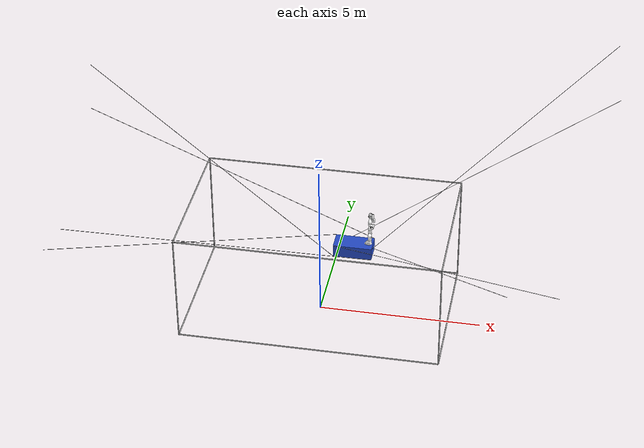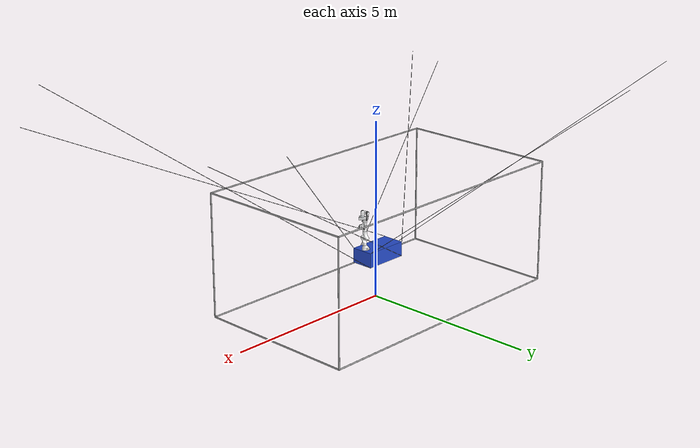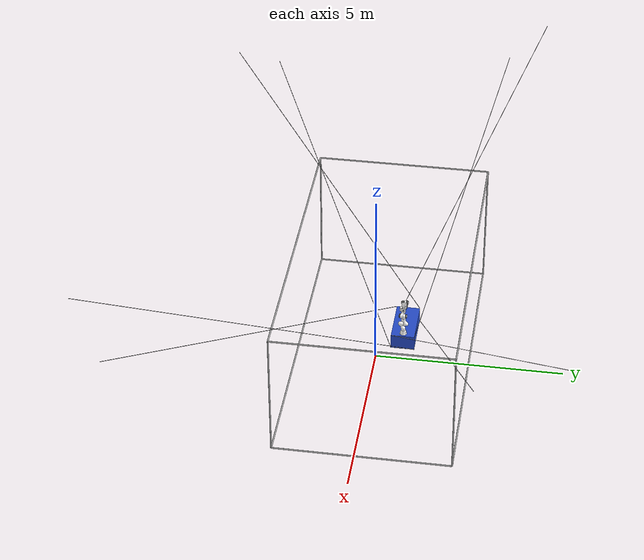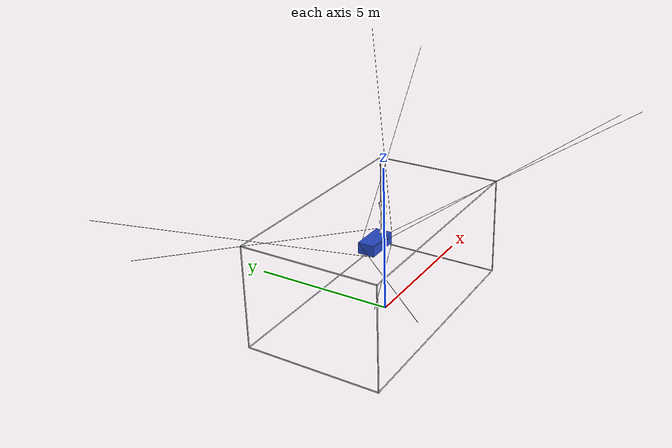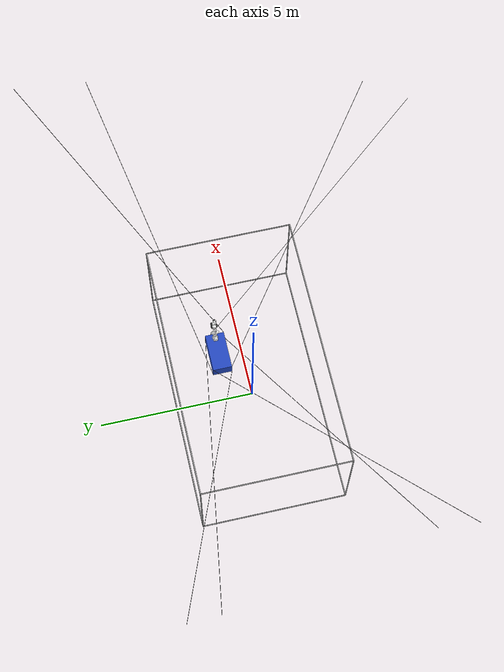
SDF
<?xml version="1.0"?>
<sdf version="1.4">
  <model name="upcaroca">
    <!--Definition of the robot frame-->
    <link name="frame">
      <pose>0 0 0 0 0 0</pose>
      <inertial>
        <inertia>
          <ixx>100000</ixx>
          <iyy>100000</iyy>
          <izz>100000</izz>
          <ixy>0</ixy>
          <ixz>0</ixz>
          <iyz>0</iyz>
        </inertia>
        <mass>100000</mass>
      </inertial>
      <visual name="visual1">
        <geometry>
          <cylinder>
            <radius>0.02</radius>
            <length>3.48</length>
          </cylinder>
        </geometry>
        <pose>-4.000000 -2.100000 1.760000 0.000000 0.000000 0.000000</pose>
        <material>
          <script>
            <uri>file://media/materials/scripts/kitchen.material</uri>
            <name>Gazebo/Grey</name>
          </script>
        </material>
      </visual>
      <collision name="collision1">
        <geometry>
          <cylinder>
            <radius>0.02</radius>
          </cylinder>
        </geometry>
        <pose>-4.000000 -2.100000 1.760000 0.000000 0.000000 0.000000</pose>
      </collision>
      <visual name="visual2">
        <geometry>
          <cylinder>
            <radius>0.02</radius>
            <length>4.6</length>
          </cylinder>
        </geometry>
        <pose>-4.000000 0.200000 0.020000 1.570796 0.000000 0.000000</pose>
        <material>
          <script>
            <uri>file://media/materials/scripts/kitchen.material</uri>
            <name>Gazebo/Grey</name>
          </script>
        </material>
      </visual>
      <collision name="collision2">
        <geometry>
          <cylinder>
            <radius>0.02</radius>
          </cylinder>
        </geometry>
        <pose>-4.000000 0.200000 0.020000 1.570796 0.000000 0.000000</pose>
      </collision>
      <visual name="visual3">
        <geometry>
          <cylinder>
            <radius>0.02</radius>
            <length>8.0</length>
          </cylinder>
        </geometry>
        <pose>0.000000 -2.100000 0.020000 0.000000 1.570796 0.000000</pose>
        <material>
          <script>
            <uri>file://media/materials/scripts/kitchen.material</uri>
            <name>Gazebo/Grey</name>
          </script>
        </material>
      </visual>
      <collision name="collision3">
        <geometry>
          <cylinder>
            <radius>0.02</radius>
          </cylinder>
        </geometry>
        <pose>0.000000 -2.100000 0.020000 0.000000 1.570796 0.000000</pose>
      </collision>
      <visual name="visual4">
        <geometry>
          <cylinder>
            <radius>0.02</radius>
            <length>4.6</length>
          </cylinder>
        </geometry>
        <pose>-4.000000 0.200000 3.500000 1.570796 0.000000 0.000000</pose>
        <material>
          <script>
            <uri>file://media/materials/scripts/kitchen.material</uri>
            <name>Gazebo/Grey</name>
          </script>
        </material>
      </visual>
      <collision name="collision4">
        <geometry>
          <cylinder>
            <radius>0.02</radius>
          </cylinder>
        </geometry>
        <pose>-4.000000 0.200000 3.500000 1.570796 0.000000 0.000000</pose>
      </collision>
      <visual name="visual5">
        <geometry>
          <cylinder>
            <radius>0.02</radius>
            <length>8.0</length>
          </cylinder>
        </geometry>
        <pose>0.000000 -2.100000 3.500000 0.000000 1.570796 0.000000</pose>
        <material>
          <script>
            <uri>file://media/materials/scripts/kitchen.material</uri>
            <name>Gazebo/Grey</name>
          </script>
        </material>
      </visual>
      <collision name="collision5">
        <geometry>
          <cylinder>
            <radius>0.02</radius>
          </cylinder>
        </geometry>
        <pose>0.000000 -2.100000 3.500000 0.000000 1.570796 0.000000</pose>
      </collision>
      <visual name="visual6">
        <geometry>
          <cylinder>
            <radius>0.02</radius>
            <length>3.48</length>
          </cylinder>
        </geometry>
        <pose>-4.000000 2.500000 1.760000 0.000000 0.000000 0.000000</pose>
        <material>
          <script>
            <uri>file://media/materials/scripts/kitchen.material</uri>
            <name>Gazebo/Grey</name>
          </script>
        </material>
      </visual>
      <collision name="collision6">
        <geometry>
          <cylinder>
            <radius>0.02</radius>
          </cylinder>
        </geometry>
        <pose>-4.000000 2.500000 1.760000 0.000000 0.000000 0.000000</pose>
      </collision>
      <visual name="visual7">
        <geometry>
          <cylinder>
            <radius>0.02</radius>
            <length>8.0</length>
          </cylinder>
        </geometry>
        <pose>0.000000 2.500000 0.020000 0.000000 1.570796 0.000000</pose>
        <material>
          <script>
            <uri>file://media/materials/scripts/kitchen.material</uri>
            <name>Gazebo/Grey</name>
          </script>
        </material>
      </visual>
      <collision name="collision7">
        <geometry>
          <cylinder>
            <radius>0.02</radius>
          </cylinder>
        </geometry>
        <pose>0.000000 2.500000 0.020000 0.000000 1.570796 0.000000</pose>
      </collision>
      <visual name="visual8">
        <geometry>
          <cylinder>
            <radius>0.02</radius>
            <length>8.0</length>
          </cylinder>
        </geometry>
        <pose>0.000000 2.500000 3.500000 0.000000 1.570796 0.000000</pose>
        <material>
          <script>
            <uri>file://media/materials/scripts/kitchen.material</uri>
            <name>Gazebo/Grey</name>
          </script>
        </material>
      </visual>
      <collision name="collision8">
        <geometry>
          <cylinder>
            <radius>0.02</radius>
          </cylinder>
        </geometry>
        <pose>0.000000 2.500000 3.500000 0.000000 1.570796 0.000000</pose>
      </collision>
      <visual name="visual9">
        <geometry>
          <cylinder>
            <radius>0.02</radius>
            <length>3.48</length>
          </cylinder>
        </geometry>
        <pose>4.000000 -2.100000 1.760000 0.000000 0.000000 0.000000</pose>
        <material>
          <script>
            <uri>file://media/materials/scripts/kitchen.material</uri>
            <name>Gazebo/Grey</name>
          </script>
        </material>
      </visual>
      <collision name="collision9">
        <geometry>
          <cylinder>
            <radius>0.02</radius>
          </cylinder>
        </geometry>
        <pose>4.000000 -2.100000 1.760000 0.000000 0.000000 0.000000</pose>
      </collision>
      <visual name="visual10">
        <geometry>
          <cylinder>
            <radius>0.02</radius>
            <length>4.6</length>
          </cylinder>
        </geometry>
        <pose>4.000000 0.200000 0.020000 1.570796 0.000000 0.000000</pose>
        <material>
          <script>
            <uri>file://media/materials/scripts/kitchen.material</uri>
            <name>Gazebo/Grey</name>
          </script>
        </material>
      </visual>
      <collision name="collision10">
        <geometry>
          <cylinder>
            <radius>0.02</radius>
          </cylinder>
        </geometry>
        <pose>4.000000 0.200000 0.020000 1.570796 0.000000 0.000000</pose>
      </collision>
      <visual name="visual11">
        <geometry>
          <cylinder>
            <radius>0.02</radius>
            <length>4.6</length>
          </cylinder>
        </geometry>
        <pose>4.000000 0.200000 3.500000 1.570796 0.000000 0.000000</pose>
        <material>
          <script>
            <uri>file://media/materials/scripts/kitchen.material</uri>
            <name>Gazebo/Grey</name>
          </script>
        </material>
      </visual>
      <collision name="collision11">
        <geometry>
          <cylinder>
            <radius>0.02</radius>
          </cylinder>
        </geometry>
        <pose>4.000000 0.200000 3.500000 1.570796 0.000000 0.000000</pose>
      </collision>
      <visual name="visual12">
        <geometry>
          <cylinder>
            <radius>0.02</radius>
            <length>3.48</length>
          </cylinder>
        </geometry>
        <pose>4.000000 2.500000 1.760000 0.000000 0.000000 0.000000</pose>
        <material>
          <script>
            <uri>file://media/materials/scripts/kitchen.material</uri>
            <name>Gazebo/Grey</name>
          </script>
        </material>
      </visual>
      <collision name="collision12">
        <geometry>
          <cylinder>
            <radius>0.02</radius>
          </cylinder>
        </geometry>
        <pose>4.000000 2.500000 1.760000 0.000000 0.000000 0.000000</pose>
      </collision>
    </link>
    <!--Definition of the robot cables-->
    <!--Definition of the robot platform-->
    <link name="platform">
      <pose>0.900000 0.900000 1.800000 0.000000 0.000000 0.000000</pose>
      <visual name="visualpf">
        <geometry>
          <box>
            <size>1.200000 0.600000 0.400000</size>
          </box>
        </geometry>
        <material>
          <script>
            <uri>file://media/materials/scripts/kitchen.material</uri>
            <name>Gazebo/Blue</name>
          </script>
        </material>
      </visual>
      <collision name="collisionpf">
        <geometry>
          <box>
            <size>1.200000 0.600000 0.400000</size>
          </box>
        </geometry>
      </collision>
      <inertial>
        <inertia>
          <ixx>6.5</ixx>
          <iyy>20.0</iyy>
          <izz>22.5</izz>
          <ixy>0.0</ixy>
          <ixz>0.0</ixz>
          <iyz>0.0</iyz>
        </inertia>
        <mass>150</mass>
      </inertial>
    </link>
    <link name="cable0">
      <pose>-2.645843 -1.555838 3.175420 -2.201876 0.998615 -1.642199</pose>
      <visual name="visual">
        <geometry>
          <cylinder>
            <radius>0.005</radius>
            <length>9.862575728479857</length>
          </cylinder>
        </geometry>
        <material>
          <script>
            <uri>file://media/materials/scripts/kitchen.material</uri>
            <name>Gazebo/Black</name>
          </script>
        </material>
      </visual>
      <inertial>
        <inertia>
          <ixx>0.001</ixx>
          <iyy>0.001</iyy>
          <izz>0.001</izz>
          <ixy>0</ixy>
          <ixz>0</ixz>
          <iyz>0</iyz>
        </inertia>
        <mass>0.001</mass>
      </inertial>
    </link>
    <link name="virt_X0">
      <inertial>
        <inertia>
          <ixx>0.001</ixx>
          <iyy>0.001</iyy>
          <izz>0.001</izz>
          <ixy>0</ixy>
          <ixz>0</ixz>
          <iyz>0</iyz>
        </inertia>
        <mass>0.001</mass>
      </inertial>
      <pose>-3.500000 -2.000000 3.500000 -2.201876 0.998615 -1.642199</pose>
    </link>
    <joint name="rev_X0" type="revolute">
      <pose>0 0 0 -2.201876 0.998615 -1.642199</pose>
      <parent>frame</parent>
      <child>virt_X0</child>
      <axis>
        <xyz>-0.038629 -0.540087 -0.840722</xyz>
        <limit>
          <effort>1000</effort>
          <velocity>10</velocity>
        </limit>
        <dynamics>
          <damping>0.01</damping>
        </dynamics>
      </axis>
    </joint>
    <link name="virt_Y0">
      <inertial>
        <inertia>
          <ixx>0.001</ixx>
          <iyy>0.001</iyy>
          <izz>0.001</izz>
          <ixy>0</ixy>
          <ixz>0</ixz>
          <iyz>0</iyz>
        </inertia>
        <mass>0.001</mass>
      </inertial>
      <pose>-3.500000 -2.000000 3.500000 -2.201876 0.998615 -1.642199</pose>
    </link>
    <joint name="rev_Y0" type="revolute">
      <pose>0 0 0 -2.201876 0.998615 -1.642199</pose>
      <parent>virt_X0</parent>
      <child>virt_Y0</child>
      <axis>
        <xyz>-0.540087 0.719155 -0.437176</xyz>
        <limit>
          <effort>1000</effort>
          <velocity>10</velocity>
        </limit>
        <dynamics>
          <damping>0.01</damping>
        </dynamics>
      </axis>
    </joint>
    <joint name="cable0" type="prismatic">
      <pose>0 0 -0.842419 -2.201876 0.998615 -1.642199</pose>
      <parent>virt_Y0</parent>
      <child>cable0</child>
      <axis>
        <xyz>-0.840722 -0.437176 0.319474</xyz>
        <limit>
          <lower>-4.931287864239929</lower>
          <upper>4.931287864239929</upper>
          <effort>10000</effort>
          <velocity>10</velocity>
        </limit>
        <dynamics>
          <damping>1</damping>
        </dynamics>
      </axis>
    </joint>
    <link name="virt_Xpf0">
      <inertial>
        <inertia>
          <ixx>0.001</ixx>
          <iyy>0.001</iyy>
          <izz>0.001</izz>
          <ixy>0</ixy>
          <ixz>0</ixz>
          <iyz>0</iyz>
        </inertia>
        <mass>0.001</mass>
      </inertial>
      <pose>1.500000 0.600000 1.600000 -2.201876 0.998615 -1.642199</pose>
    </link>
    <joint name="rev_Xpf0" type="revolute">
      <pose>0 0 0 -2.201876 0.998615 -1.642199</pose>
      <parent>platform</parent>
      <child>virt_Xpf0</child>
      <axis>
        <xyz>1 0 0</xyz>
        <limit>
          <effort>1000</effort>
          <velocity>10</velocity>
        </limit>
        <dynamics>
          <damping>0.01</damping>
        </dynamics>
      </axis>
    </joint>
    <link name="virt_Ypf0">
      <inertial>
        <inertia>
          <ixx>0.001</ixx>
          <iyy>0.001</iyy>
          <izz>0.001</izz>
          <ixy>0</ixy>
          <ixz>0</ixz>
          <iyz>0</iyz>
        </inertia>
        <mass>0.001</mass>
      </inertial>
      <pose>1.500000 0.600000 1.600000 -2.201876 0.998615 -1.642199</pose>
    </link>
    <joint name="rev_Ypf0" type="revolute">
      <pose>0 0 0 -2.201876 0.998615 -1.642199</pose>
      <parent>virt_Xpf0</parent>
      <child>virt_Ypf0</child>
      <axis>
        <xyz>0 1 0</xyz>
        <limit>
          <effort>1000</effort>
          <velocity>10</velocity>
        </limit>
        <dynamics>
          <damping>0.01</damping>
        </dynamics>
      </axis>
    </joint>
    <joint name="rev_Zpf0" type="revolute">
      <pose>0 0 0 -2.201876 0.998615 -1.642199</pose>
      <child>virt_Ypf0</child>
      <parent>cable0</parent>
      <axis>
        <xyz>0 0 1</xyz>
        <limit>
          <effort>1000</effort>
          <velocity>10</velocity>
        </limit>
        <dynamics>
          <damping>0.01</damping>
        </dynamics>
      </axis>
    </joint>
    <link name="cable1">
      <pose>-3.310986 -1.840830 3.425389 -2.009133 0.821635 -1.201550</pose>
      <visual name="visual">
        <geometry>
          <cylinder>
            <radius>0.005</radius>
            <length>9.862575728479857</length>
          </cylinder>
        </geometry>
        <material>
          <script>
            <uri>file://media/materials/scripts/kitchen.material</uri>
            <name>Gazebo/Black</name>
          </script>
        </material>
      </visual>
      <inertial>
        <inertia>
          <ixx>0.001</ixx>
          <iyy>0.001</iyy>
          <izz>0.001</izz>
          <ixy>0</ixy>
          <ixz>0</ixz>
          <iyz>0</iyz>
        </inertia>
        <mass>0.001</mass>
      </inertial>
    </link>
    <link name="virt_X1">
      <inertial>
        <inertia>
          <ixx>0.001</ixx>
          <iyy>0.001</iyy>
          <izz>0.001</izz>
          <ixy>0</ixy>
          <ixz>0</ixz>
          <iyz>0</iyz>
        </inertia>
        <mass>0.001</mass>
      </inertial>
      <pose>-3.500000 -2.000000 3.500000 -2.009133 0.821635 -1.201550</pose>
    </link>
    <joint name="rev_X1" type="revolute">
      <pose>0 0 0 -2.009133 0.821635 -1.201550</pose>
      <parent>frame</parent>
      <child>virt_X1</child>
      <axis>
        <xyz>0.245791 -0.635124 -0.732260</xyz>
        <limit>
          <effort>1000</effort>
          <velocity>10</velocity>
        </limit>
        <dynamics>
          <damping>0.01</damping>
        </dynamics>
      </axis>
    </joint>
    <link name="virt_Y1">
      <inertial>
        <inertia>
          <ixx>0.001</ixx>
          <iyy>0.001</iyy>
          <izz>0.001</izz>
          <ixy>0</ixy>
          <ixz>0</ixz>
          <iyz>0</iyz>
        </inertia>
        <mass>0.001</mass>
      </inertial>
      <pose>-3.500000 -2.000000 3.500000 -2.009133 0.821635 -1.201550</pose>
    </link>
    <joint name="rev_Y1" type="revolute">
      <pose>0 0 0 -2.009133 0.821635 -1.201550</pose>
      <parent>virt_X1</parent>
      <child>virt_Y1</child>
      <axis>
        <xyz>-0.635124 0.465159 -0.616640</xyz>
        <limit>
          <effort>1000</effort>
          <velocity>10</velocity>
        </limit>
        <dynamics>
          <damping>0.01</damping>
        </dynamics>
      </axis>
    </joint>
    <joint name="cable1" type="prismatic">
      <pose>0 0 -0.245285 -2.009133 0.821635 -1.201550</pose>
      <parent>virt_Y1</parent>
      <child>cable1</child>
      <axis>
        <xyz>-0.732260 -0.616640 0.289050</xyz>
        <limit>
          <lower>-4.931287864239929</lower>
          <upper>4.931287864239929</upper>
          <effort>10000</effort>
          <velocity>10</velocity>
        </limit>
        <dynamics>
          <damping>1</damping>
        </dynamics>
      </axis>
    </joint>
    <link name="virt_Xpf1">
      <inertial>
        <inertia>
          <ixx>0.001</ixx>
          <iyy>0.001</iyy>
          <izz>0.001</izz>
          <ixy>0</ixy>
          <ixz>0</ixz>
          <iyz>0</iyz>
        </inertia>
        <mass>0.001</mass>
      </inertial>
      <pose>0.300000 1.200000 2.000000 -2.009133 0.821635 -1.201550</pose>
    </link>
    <joint name="rev_Xpf1" type="revolute">
      <pose>0 0 0 -2.009133 0.821635 -1.201550</pose>
      <parent>platform</parent>
      <child>virt_Xpf1</child>
      <axis>
        <xyz>1 0 0</xyz>
        <limit>
          <effort>1000</effort>
          <velocity>10</velocity>
        </limit>
        <dynamics>
          <damping>0.01</damping>
        </dynamics>
      </axis>
    </joint>
    <link name="virt_Ypf1">
      <inertial>
        <inertia>
          <ixx>0.001</ixx>
          <iyy>0.001</iyy>
          <izz>0.001</izz>
          <ixy>0</ixy>
          <ixz>0</ixz>
          <iyz>0</iyz>
        </inertia>
        <mass>0.001</mass>
      </inertial>
      <pose>0.300000 1.200000 2.000000 -2.009133 0.821635 -1.201550</pose>
    </link>
    <joint name="rev_Ypf1" type="revolute">
      <pose>0 0 0 -2.009133 0.821635 -1.201550</pose>
      <parent>virt_Xpf1</parent>
      <child>virt_Ypf1</child>
      <axis>
        <xyz>0 1 0</xyz>
        <limit>
          <effort>1000</effort>
          <velocity>10</velocity>
        </limit>
        <dynamics>
          <damping>0.01</damping>
        </dynamics>
      </axis>
    </joint>
    <joint name="rev_Zpf1" type="revolute">
      <pose>0 0 0 -2.009133 0.821635 -1.201550</pose>
      <child>virt_Ypf1</child>
      <parent>cable1</parent>
      <axis>
        <xyz>0 0 1</xyz>
        <limit>
          <effort>1000</effort>
          <velocity>10</velocity>
        </limit>
        <dynamics>
          <damping>0.01</damping>
        </dynamics>
      </axis>
    </joint>
    <link name="cable2">
      <pose>3.896623 -2.322257 3.685917 -2.094075 -0.817368 1.286769</pose>
      <visual name="visual">
        <geometry>
          <cylinder>
            <radius>0.005</radius>
            <length>9.862575728479857</length>
          </cylinder>
        </geometry>
        <material>
          <script>
            <uri>file://media/materials/scripts/kitchen.material</uri>
            <name>Gazebo/Black</name>
          </script>
        </material>
      </visual>
      <inertial>
        <inertia>
          <ixx>0.001</ixx>
          <iyy>0.001</iyy>
          <izz>0.001</izz>
          <ixy>0</ixy>
          <ixz>0</ixz>
          <iyz>0</iyz>
        </inertia>
        <mass>0.001</mass>
      </inertial>
    </link>
    <link name="virt_X2">
      <inertial>
        <inertia>
          <ixx>0.001</ixx>
          <iyy>0.001</iyy>
          <izz>0.001</izz>
          <ixy>0</ixy>
          <ixz>0</ixz>
          <iyz>0</iyz>
        </inertia>
        <mass>0.001</mass>
      </inertial>
      <pose>3.500000 -2.000000 3.500000 -2.094075 -0.817368 1.286769</pose>
    </link>
    <joint name="rev_X2" type="revolute">
      <pose>0 0 0 -2.094075 -0.817368 1.286769</pose>
      <parent>frame</parent>
      <child>virt_X2</child>
      <axis>
        <xyz>0.191714 0.656733 0.729348</xyz>
        <limit>
          <effort>1000</effort>
          <velocity>10</velocity>
        </limit>
        <dynamics>
          <damping>0.01</damping>
        </dynamics>
      </axis>
    </joint>
    <link name="virt_Y2">
      <inertial>
        <inertia>
          <ixx>0.001</ixx>
          <iyy>0.001</iyy>
          <izz>0.001</izz>
          <ixy>0</ixy>
          <ixz>0</ixz>
          <iyz>0</iyz>
        </inertia>
        <mass>0.001</mass>
      </inertial>
      <pose>3.500000 -2.000000 3.500000 -2.094075 -0.817368 1.286769</pose>
    </link>
    <joint name="rev_Y2" type="revolute">
      <pose>0 0 0 -2.094075 -0.817368 1.286769</pose>
      <parent>virt_X2</parent>
      <child>virt_Y2</child>
      <axis>
        <xyz>0.656733 0.466405 -0.592595</xyz>
        <limit>
          <effort>1000</effort>
          <velocity>10</velocity>
        </limit>
        <dynamics>
          <damping>0.01</damping>
        </dynamics>
      </axis>
    </joint>
    <joint name="cable2" type="prismatic">
      <pose>0 0 0.611208 -2.094075 -0.817368 1.286769</pose>
      <parent>virt_Y2</parent>
      <child>cable2</child>
      <axis>
        <xyz>0.729348 -0.592595 0.341882</xyz>
        <limit>
          <lower>-4.931287864239929</lower>
          <upper>4.931287864239929</upper>
          <effort>10000</effort>
          <velocity>10</velocity>
        </limit>
        <dynamics>
          <damping>1</damping>
        </dynamics>
      </axis>
    </joint>
    <link name="virt_Xpf2">
      <inertial>
        <inertia>
          <ixx>0.001</ixx>
          <iyy>0.001</iyy>
          <izz>0.001</izz>
          <ixy>0</ixy>
          <ixz>0</ixz>
          <iyz>0</iyz>
        </inertia>
        <mass>0.001</mass>
      </inertial>
      <pose>0.300000 0.600000 2.000000 -2.094075 -0.817368 1.286769</pose>
    </link>
    <joint name="rev_Xpf2" type="revolute">
      <pose>0 0 0 -2.094075 -0.817368 1.286769</pose>
      <parent>platform</parent>
      <child>virt_Xpf2</child>
      <axis>
        <xyz>1 0 0</xyz>
        <limit>
          <effort>1000</effort>
          <velocity>10</velocity>
        </limit>
        <dynamics>
          <damping>0.01</damping>
        </dynamics>
      </axis>
    </joint>
    <link name="virt_Ypf2">
      <inertial>
        <inertia>
          <ixx>0.001</ixx>
          <iyy>0.001</iyy>
          <izz>0.001</izz>
          <ixy>0</ixy>
          <ixz>0</ixz>
          <iyz>0</iyz>
        </inertia>
        <mass>0.001</mass>
      </inertial>
      <pose>0.300000 0.600000 2.000000 -2.094075 -0.817368 1.286769</pose>
    </link>
    <joint name="rev_Ypf2" type="revolute">
      <pose>0 0 0 -2.094075 -0.817368 1.286769</pose>
      <parent>virt_Xpf2</parent>
      <child>virt_Ypf2</child>
      <axis>
        <xyz>0 1 0</xyz>
        <limit>
          <effort>1000</effort>
          <velocity>10</velocity>
        </limit>
        <dynamics>
          <damping>0.01</damping>
        </dynamics>
      </axis>
    </joint>
    <joint name="rev_Zpf2" type="revolute">
      <pose>0 0 0 -2.094075 -0.817368 1.286769</pose>
      <child>virt_Ypf2</child>
      <parent>cable2</parent>
      <axis>
        <xyz>0 0 1</xyz>
        <limit>
          <effort>1000</effort>
          <velocity>10</velocity>
        </limit>
        <dynamics>
          <damping>0.01</damping>
        </dynamics>
      </axis>
    </joint>
    <link name="cable3">
      <pose>3.834378 -2.535005 3.817659 -2.106608 -0.493125 0.832600</pose>
      <visual name="visual">
        <geometry>
          <cylinder>
            <radius>0.005</radius>
            <length>9.862575728479857</length>
          </cylinder>
        </geometry>
        <material>
          <script>
            <uri>file://media/materials/scripts/kitchen.material</uri>
            <name>Gazebo/Black</name>
          </script>
        </material>
      </visual>
      <inertial>
        <inertia>
          <ixx>0.001</ixx>
          <iyy>0.001</iyy>
          <izz>0.001</izz>
          <ixy>0</ixy>
          <ixz>0</ixz>
          <iyz>0</iyz>
        </inertia>
        <mass>0.001</mass>
      </inertial>
    </link>
    <link name="virt_X3">
      <inertial>
        <inertia>
          <ixx>0.001</ixx>
          <iyy>0.001</iyy>
          <izz>0.001</izz>
          <ixy>0</ixy>
          <ixz>0</ixz>
          <iyz>0</iyz>
        </inertia>
        <mass>0.001</mass>
      </inertial>
      <pose>3.500000 -2.000000 3.500000 -2.106608 -0.493125 0.832600</pose>
    </link>
    <joint name="rev_X3" type="revolute">
      <pose>0 0 0 -2.106608 -0.493125 0.832600</pose>
      <parent>frame</parent>
      <child>virt_X3</child>
      <axis>
        <xyz>0.592778 0.651556 0.473381</xyz>
        <limit>
          <effort>1000</effort>
          <velocity>10</velocity>
        </limit>
        <dynamics>
          <damping>0.01</damping>
        </dynamics>
      </axis>
    </joint>
    <link name="virt_Y3">
      <inertial>
        <inertia>
          <ixx>0.001</ixx>
          <iyy>0.001</iyy>
          <izz>0.001</izz>
          <ixy>0</ixy>
          <ixz>0</ixz>
          <iyz>0</iyz>
        </inertia>
        <mass>0.001</mass>
      </inertial>
      <pose>3.500000 -2.000000 3.500000 -2.106608 -0.493125 0.832600</pose>
    </link>
    <joint name="rev_Y3" type="revolute">
      <pose>0 0 0 -2.106608 -0.493125 0.832600</pose>
      <parent>virt_X3</parent>
      <child>virt_Y3</child>
      <axis>
        <xyz>0.651556 -0.042490 -0.757410</xyz>
        <limit>
          <effort>1000</effort>
          <velocity>10</velocity>
        </limit>
        <dynamics>
          <damping>0.01</damping>
        </dynamics>
      </axis>
    </joint>
    <joint name="cable3" type="prismatic">
      <pose>0 0 0.824458 -2.106608 -0.493125 0.832600</pose>
      <parent>virt_Y3</parent>
      <child>cable3</child>
      <axis>
        <xyz>0.473381 -0.757410 0.449712</xyz>
        <limit>
          <lower>-4.931287864239929</lower>
          <upper>4.931287864239929</upper>
          <effort>10000</effort>
          <velocity>10</velocity>
        </limit>
        <dynamics>
          <damping>1</damping>
        </dynamics>
      </axis>
    </joint>
    <link name="virt_Xpf3">
      <inertial>
        <inertia>
          <ixx>0.001</ixx>
          <iyy>0.001</iyy>
          <izz>0.001</izz>
          <ixy>0</ixy>
          <ixz>0</ixz>
          <iyz>0</iyz>
        </inertia>
        <mass>0.001</mass>
      </inertial>
      <pose>1.500000 1.200000 1.600000 -2.106608 -0.493125 0.832600</pose>
    </link>
    <joint name="rev_Xpf3" type="revolute">
      <pose>0 0 0 -2.106608 -0.493125 0.832600</pose>
      <parent>platform</parent>
      <child>virt_Xpf3</child>
      <axis>
        <xyz>1 0 0</xyz>
        <limit>
          <effort>1000</effort>
          <velocity>10</velocity>
        </limit>
        <dynamics>
          <damping>0.01</damping>
        </dynamics>
      </axis>
    </joint>
    <link name="virt_Ypf3">
      <inertial>
        <inertia>
          <ixx>0.001</ixx>
          <iyy>0.001</iyy>
          <izz>0.001</izz>
          <ixy>0</ixy>
          <ixz>0</ixz>
          <iyz>0</iyz>
        </inertia>
        <mass>0.001</mass>
      </inertial>
      <pose>1.500000 1.200000 1.600000 -2.106608 -0.493125 0.832600</pose>
    </link>
    <joint name="rev_Ypf3" type="revolute">
      <pose>0 0 0 -2.106608 -0.493125 0.832600</pose>
      <parent>virt_Xpf3</parent>
      <child>virt_Ypf3</child>
      <axis>
        <xyz>0 1 0</xyz>
        <limit>
          <effort>1000</effort>
          <velocity>10</velocity>
        </limit>
        <dynamics>
          <damping>0.01</damping>
        </dynamics>
      </axis>
    </joint>
    <joint name="rev_Zpf3" type="revolute">
      <pose>0 0 0 -2.106608 -0.493125 0.832600</pose>
      <child>virt_Ypf3</child>
      <parent>cable3</parent>
      <axis>
        <xyz>0 0 1</xyz>
        <limit>
          <effort>1000</effort>
          <velocity>10</velocity>
        </limit>
        <dynamics>
          <damping>0.01</damping>
        </dynamics>
      </axis>
    </joint>
    <link name="cable4">
      <pose>-3.889097 2.143351 3.694548 2.506566 1.015025 2.074099</pose>
      <visual name="visual">
        <geometry>
          <cylinder>
            <radius>0.005</radius>
            <length>9.862575728479857</length>
          </cylinder>
        </geometry>
        <material>
          <script>
            <uri>file://media/materials/scripts/kitchen.material</uri>
            <name>Gazebo/Black</name>
          </script>
        </material>
      </visual>
      <inertial>
        <inertia>
          <ixx>0.001</ixx>
          <iyy>0.001</iyy>
          <izz>0.001</izz>
          <ixy>0</ixy>
          <ixz>0</ixz>
          <iyz>0</iyz>
        </inertia>
        <mass>0.001</mass>
      </inertial>
    </link>
    <link name="virt_X4">
      <inertial>
        <inertia>
          <ixx>0.001</ixx>
          <iyy>0.001</iyy>
          <izz>0.001</izz>
          <ixy>0</ixy>
          <ixz>0</ixz>
          <iyz>0</iyz>
        </inertia>
        <mass>0.001</mass>
      </inertial>
      <pose>-3.500000 2.000000 3.500000 2.506566 1.015025 2.074099</pose>
    </link>
    <joint name="rev_X4" type="revolute">
      <pose>0 0 0 2.506566 1.015025 2.074099</pose>
      <parent>frame</parent>
      <child>virt_X4</child>
      <axis>
        <xyz>-0.254472 0.462174 -0.849493</xyz>
        <limit>
          <effort>1000</effort>
          <velocity>10</velocity>
        </limit>
        <dynamics>
          <damping>0.01</damping>
        </dynamics>
      </axis>
    </joint>
    <link name="virt_Y4">
      <inertial>
        <inertia>
          <ixx>0.001</ixx>
          <iyy>0.001</iyy>
          <izz>0.001</izz>
          <ixy>0</ixy>
          <ixz>0</ixz>
          <iyz>0</iyz>
        </inertia>
        <mass>0.001</mass>
      </inertial>
      <pose>-3.500000 2.000000 3.500000 2.506566 1.015025 2.074099</pose>
    </link>
    <joint name="rev_Y4" type="revolute">
      <pose>0 0 0 2.506566 1.015025 2.074099</pose>
      <parent>virt_X4</parent>
      <child>virt_Y4</child>
      <axis>
        <xyz>0.462174 0.829725 0.312971</xyz>
        <limit>
          <effort>1000</effort>
          <velocity>10</velocity>
        </limit>
        <dynamics>
          <damping>0.01</damping>
        </dynamics>
      </axis>
    </joint>
    <joint name="cable4" type="prismatic">
      <pose>0 0 0.504934 2.506566 1.015025 2.074099</pose>
      <parent>virt_Y4</parent>
      <child>cable4</child>
      <axis>
        <xyz>-0.849493 0.312971 0.424747</xyz>
        <limit>
          <lower>-4.931287864239929</lower>
          <upper>4.931287864239929</upper>
          <effort>10000</effort>
          <velocity>10</velocity>
        </limit>
        <dynamics>
          <damping>1</damping>
        </dynamics>
      </axis>
    </joint>
    <link name="virt_Xpf4">
      <inertial>
        <inertia>
          <ixx>0.001</ixx>
          <iyy>0.001</iyy>
          <izz>0.001</izz>
          <ixy>0</ixy>
          <ixz>0</ixz>
          <iyz>0</iyz>
        </inertia>
        <mass>0.001</mass>
      </inertial>
      <pose>0.300000 0.600000 1.600000 2.506566 1.015025 2.074099</pose>
    </link>
    <joint name="rev_Xpf4" type="revolute">
      <pose>0 0 0 2.506566 1.015025 2.074099</pose>
      <parent>platform</parent>
      <child>virt_Xpf4</child>
      <axis>
        <xyz>1 0 0</xyz>
        <limit>
          <effort>1000</effort>
          <velocity>10</velocity>
        </limit>
        <dynamics>
          <damping>0.01</damping>
        </dynamics>
      </axis>
    </joint>
    <link name="virt_Ypf4">
      <inertial>
        <inertia>
          <ixx>0.001</ixx>
          <iyy>0.001</iyy>
          <izz>0.001</izz>
          <ixy>0</ixy>
          <ixz>0</ixz>
          <iyz>0</iyz>
        </inertia>
        <mass>0.001</mass>
      </inertial>
      <pose>0.300000 0.600000 1.600000 2.506566 1.015025 2.074099</pose>
    </link>
    <joint name="rev_Ypf4" type="revolute">
      <pose>0 0 0 2.506566 1.015025 2.074099</pose>
      <parent>virt_Xpf4</parent>
      <child>virt_Ypf4</child>
      <axis>
        <xyz>0 1 0</xyz>
        <limit>
          <effort>1000</effort>
          <velocity>10</velocity>
        </limit>
        <dynamics>
          <damping>0.01</damping>
        </dynamics>
      </axis>
    </joint>
    <joint name="rev_Zpf4" type="revolute">
      <pose>0 0 0 2.506566 1.015025 2.074099</pose>
      <child>virt_Ypf4</child>
      <parent>cable4</parent>
      <axis>
        <xyz>0 0 1</xyz>
        <limit>
          <effort>1000</effort>
          <velocity>10</velocity>
        </limit>
        <dynamics>
          <damping>0.01</damping>
        </dynamics>
      </axis>
    </joint>
    <link name="cable5">
      <pose>-3.168809 1.947009 3.400643 2.651635 1.243058 2.469927</pose>
      <visual name="visual">
        <geometry>
          <cylinder>
            <radius>0.005</radius>
            <length>9.862575728479857</length>
          </cylinder>
        </geometry>
        <material>
          <script>
            <uri>file://media/materials/scripts/kitchen.material</uri>
            <name>Gazebo/Black</name>
          </script>
        </material>
      </visual>
      <inertial>
        <inertia>
          <ixx>0.001</ixx>
          <iyy>0.001</iyy>
          <izz>0.001</izz>
          <ixy>0</ixy>
          <ixz>0</ixz>
          <iyz>0</iyz>
        </inertia>
        <mass>0.001</mass>
      </inertial>
    </link>
    <link name="virt_X5">
      <inertial>
        <inertia>
          <ixx>0.001</ixx>
          <iyy>0.001</iyy>
          <izz>0.001</izz>
          <ixy>0</ixy>
          <ixz>0</ixz>
          <iyz>0</iyz>
        </inertia>
        <mass>0.001</mass>
      </inertial>
      <pose>-3.500000 2.000000 3.500000 2.651635 1.243058 2.469927</pose>
    </link>
    <joint name="rev_X5" type="revolute">
      <pose>0 0 0 2.651635 1.243058 2.469927</pose>
      <parent>frame</parent>
      <child>virt_X5</child>
      <axis>
        <xyz>-0.251981 0.200317 -0.946773</xyz>
        <limit>
          <effort>1000</effort>
          <velocity>10</velocity>
        </limit>
        <dynamics>
          <damping>0.01</damping>
        </dynamics>
      </axis>
    </joint>
    <link name="virt_Y5">
      <inertial>
        <inertia>
          <ixx>0.001</ixx>
          <iyy>0.001</iyy>
          <izz>0.001</izz>
          <ixy>0</ixy>
          <ixz>0</ixz>
          <iyz>0</iyz>
        </inertia>
        <mass>0.001</mass>
      </inertial>
      <pose>-3.500000 2.000000 3.500000 2.651635 1.243058 2.469927</pose>
    </link>
    <joint name="rev_Y5" type="revolute">
      <pose>0 0 0 2.651635 1.243058 2.469927</pose>
      <parent>virt_X5</parent>
      <child>virt_Y5</child>
      <axis>
        <xyz>0.200317 0.967949 0.151484</xyz>
        <limit>
          <effort>1000</effort>
          <velocity>10</velocity>
        </limit>
        <dynamics>
          <damping>0.01</damping>
        </dynamics>
      </axis>
    </joint>
    <joint name="cable5" type="prismatic">
      <pose>0 0 -0.326640 2.651635 1.243058 2.469927</pose>
      <parent>virt_Y5</parent>
      <child>cable5</child>
      <axis>
        <xyz>-0.946773 0.151484 0.284032</xyz>
        <limit>
          <lower>-4.931287864239929</lower>
          <upper>4.931287864239929</upper>
          <effort>10000</effort>
          <velocity>10</velocity>
        </limit>
        <dynamics>
          <damping>1</damping>
        </dynamics>
      </axis>
    </joint>
    <link name="virt_Xpf5">
      <inertial>
        <inertia>
          <ixx>0.001</ixx>
          <iyy>0.001</iyy>
          <izz>0.001</izz>
          <ixy>0</ixy>
          <ixz>0</ixz>
          <iyz>0</iyz>
        </inertia>
        <mass>0.001</mass>
      </inertial>
      <pose>1.500000 1.200000 2.000000 2.651635 1.243058 2.469927</pose>
    </link>
    <joint name="rev_Xpf5" type="revolute">
      <pose>0 0 0 2.651635 1.243058 2.469927</pose>
      <parent>platform</parent>
      <child>virt_Xpf5</child>
      <axis>
        <xyz>1 0 0</xyz>
        <limit>
          <effort>1000</effort>
          <velocity>10</velocity>
        </limit>
        <dynamics>
          <damping>0.01</damping>
        </dynamics>
      </axis>
    </joint>
    <link name="virt_Ypf5">
      <inertial>
        <inertia>
          <ixx>0.001</ixx>
          <iyy>0.001</iyy>
          <izz>0.001</izz>
          <ixy>0</ixy>
          <ixz>0</ixz>
          <iyz>0</iyz>
        </inertia>
        <mass>0.001</mass>
      </inertial>
      <pose>1.500000 1.200000 2.000000 2.651635 1.243058 2.469927</pose>
    </link>
    <joint name="rev_Ypf5" type="revolute">
      <pose>0 0 0 2.651635 1.243058 2.469927</pose>
      <parent>virt_Xpf5</parent>
      <child>virt_Ypf5</child>
      <axis>
        <xyz>0 1 0</xyz>
        <limit>
          <effort>1000</effort>
          <velocity>10</velocity>
        </limit>
        <dynamics>
          <damping>0.01</damping>
        </dynamics>
      </axis>
    </joint>
    <joint name="rev_Zpf5" type="revolute">
      <pose>0 0 0 2.651635 1.243058 2.469927</pose>
      <child>virt_Ypf5</child>
      <parent>cable5</parent>
      <axis>
        <xyz>0 0 1</xyz>
        <limit>
          <effort>1000</effort>
          <velocity>10</velocity>
        </limit>
        <dynamics>
          <damping>0.01</damping>
        </dynamics>
      </axis>
    </joint>
    <link name="cable6">
      <pose>4.942063 3.009444 4.581547 2.390664 -0.772607 -1.602202</pose>
      <visual name="visual">
        <geometry>
          <cylinder>
            <radius>0.005</radius>
            <length>9.862575728479857</length>
          </cylinder>
        </geometry>
        <material>
          <script>
            <uri>file://media/materials/scripts/kitchen.material</uri>
            <name>Gazebo/Black</name>
          </script>
        </material>
      </visual>
      <inertial>
        <inertia>
          <ixx>0.001</ixx>
          <iyy>0.001</iyy>
          <izz>0.001</izz>
          <ixy>0</ixy>
          <ixz>0</ixz>
          <iyz>0</iyz>
        </inertia>
        <mass>0.001</mass>
      </inertial>
    </link>
    <link name="virt_X6">
      <inertial>
        <inertia>
          <ixx>0.001</ixx>
          <iyy>0.001</iyy>
          <izz>0.001</izz>
          <ixy>0</ixy>
          <ixz>0</ixz>
          <iyz>0</iyz>
        </inertia>
        <mass>0.001</mass>
      </inertial>
      <pose>3.500000 2.000000 3.500000 2.390664 -0.772607 -1.602202</pose>
    </link>
    <joint name="rev_X6" type="revolute">
      <pose>0 0 0 2.390664 -0.772607 -1.602202</pose>
      <parent>frame</parent>
      <child>virt_X6</child>
      <axis>
        <xyz>-0.022486 -0.715740 0.698005</xyz>
        <limit>
          <effort>1000</effort>
          <velocity>10</velocity>
        </limit>
        <dynamics>
          <damping>0.01</damping>
        </dynamics>
      </axis>
    </joint>
    <link name="virt_Y6">
      <inertial>
        <inertia>
          <ixx>0.001</ixx>
          <iyy>0.001</iyy>
          <izz>0.001</izz>
          <ixy>0</ixy>
          <ixz>0</ixz>
          <iyz>0</iyz>
        </inertia>
        <mass>0.001</mass>
      </inertial>
      <pose>3.500000 2.000000 3.500000 2.390664 -0.772607 -1.602202</pose>
    </link>
    <joint name="rev_Y6" type="revolute">
      <pose>0 0 0 2.390664 -0.772607 -1.602202</pose>
      <parent>virt_X6</parent>
      <child>virt_Y6</child>
      <axis>
        <xyz>-0.715740 0.498982 0.488603</xyz>
        <limit>
          <effort>1000</effort>
          <velocity>10</velocity>
        </limit>
        <dynamics>
          <damping>0.01</damping>
        </dynamics>
      </axis>
    </joint>
    <joint name="cable6" type="prismatic">
      <pose>0 0 3.555613 2.390664 -0.772607 -1.602202</pose>
      <parent>virt_Y6</parent>
      <child>cable6</child>
      <axis>
        <xyz>0.698005 0.488603 0.523504</xyz>
        <limit>
          <lower>-4.931287864239929</lower>
          <upper>4.931287864239929</upper>
          <effort>10000</effort>
          <velocity>10</velocity>
        </limit>
        <dynamics>
          <damping>1</damping>
        </dynamics>
      </axis>
    </joint>
    <link name="virt_Xpf6">
      <inertial>
        <inertia>
          <ixx>0.001</ixx>
          <iyy>0.001</iyy>
          <izz>0.001</izz>
          <ixy>0</ixy>
          <ixz>0</ixz>
          <iyz>0</iyz>
        </inertia>
        <mass>0.001</mass>
      </inertial>
      <pose>1.500000 0.600000 2.000000 2.390664 -0.772607 -1.602202</pose>
    </link>
    <joint name="rev_Xpf6" type="revolute">
      <pose>0 0 0 2.390664 -0.772607 -1.602202</pose>
      <parent>platform</parent>
      <child>virt_Xpf6</child>
      <axis>
        <xyz>1 0 0</xyz>
        <limit>
          <effort>1000</effort>
          <velocity>10</velocity>
        </limit>
        <dynamics>
          <damping>0.01</damping>
        </dynamics>
      </axis>
    </joint>
    <link name="virt_Ypf6">
      <inertial>
        <inertia>
          <ixx>0.001</ixx>
          <iyy>0.001</iyy>
          <izz>0.001</izz>
          <ixy>0</ixy>
          <ixz>0</ixz>
          <iyz>0</iyz>
        </inertia>
        <mass>0.001</mass>
      </inertial>
      <pose>1.500000 0.600000 2.000000 2.390664 -0.772607 -1.602202</pose>
    </link>
    <joint name="rev_Ypf6" type="revolute">
      <pose>0 0 0 2.390664 -0.772607 -1.602202</pose>
      <parent>virt_Xpf6</parent>
      <child>virt_Ypf6</child>
      <axis>
        <xyz>0 1 0</xyz>
        <limit>
          <effort>1000</effort>
          <velocity>10</velocity>
        </limit>
        <dynamics>
          <damping>0.01</damping>
        </dynamics>
      </axis>
    </joint>
    <joint name="rev_Zpf6" type="revolute">
      <pose>0 0 0 2.390664 -0.772607 -1.602202</pose>
      <child>virt_Ypf6</child>
      <parent>cable6</parent>
      <axis>
        <xyz>0 0 1</xyz>
        <limit>
          <effort>1000</effort>
          <velocity>10</velocity>
        </limit>
        <dynamics>
          <damping>0.01</damping>
        </dynamics>
      </axis>
    </joint>
    <link name="cable7">
      <pose>4.445493 2.236373 4.061386 2.743070 -0.998484 -2.432275</pose>
      <visual name="visual">
        <geometry>
          <cylinder>
            <radius>0.005</radius>
            <length>9.862575728479857</length>
          </cylinder>
        </geometry>
        <material>
          <script>
            <uri>file://media/materials/scripts/kitchen.material</uri>
            <name>Gazebo/Black</name>
          </script>
        </material>
      </visual>
      <inertial>
        <inertia>
          <ixx>0.001</ixx>
          <iyy>0.001</iyy>
          <izz>0.001</izz>
          <ixy>0</ixy>
          <ixz>0</ixz>
          <iyz>0</iyz>
        </inertia>
        <mass>0.001</mass>
      </inertial>
    </link>
    <link name="virt_X7">
      <inertial>
        <inertia>
          <ixx>0.001</ixx>
          <iyy>0.001</iyy>
          <izz>0.001</izz>
          <ixy>0</ixy>
          <ixz>0</ixz>
          <iyz>0</iyz>
        </inertia>
        <mass>0.001</mass>
      </inertial>
      <pose>3.500000 2.000000 3.500000 2.743070 -0.998484 -2.432275</pose>
    </link>
    <joint name="rev_X7" type="revolute">
      <pose>0 0 0 2.743070 -0.998484 -2.432275</pose>
      <parent>frame</parent>
      <child>virt_X7</child>
      <axis>
        <xyz>-0.410952 -0.352738 0.840651</xyz>
        <limit>
          <effort>1000</effort>
          <velocity>10</velocity>
        </limit>
        <dynamics>
          <damping>0.01</damping>
        </dynamics>
      </axis>
    </joint>
    <link name="virt_Y7">
      <inertial>
        <inertia>
          <ixx>0.001</ixx>
          <iyy>0.001</iyy>
          <izz>0.001</izz>
          <ixy>0</ixy>
          <ixz>0</ixz>
          <iyz>0</iyz>
        </inertia>
        <mass>0.001</mass>
      </inertial>
      <pose>3.500000 2.000000 3.500000 2.743070 -0.998484 -2.432275</pose>
    </link>
    <joint name="rev_Y7" type="revolute">
      <pose>0 0 0 2.743070 -0.998484 -2.432275</pose>
      <parent>virt_X7</parent>
      <child>virt_Y7</child>
      <axis>
        <xyz>-0.352738 0.911815 0.210163</xyz>
        <limit>
          <effort>1000</effort>
          <velocity>10</velocity>
        </limit>
        <dynamics>
          <damping>0.01</damping>
        </dynamics>
      </axis>
    </joint>
    <joint name="cable7" type="prismatic">
      <pose>0 0 1.457030 2.743070 -0.998484 -2.432275</pose>
      <parent>virt_Y7</parent>
      <child>cable7</child>
      <axis>
        <xyz>0.840651 0.210163 0.499137</xyz>
        <limit>
          <lower>-4.931287864239929</lower>
          <upper>4.931287864239929</upper>
          <effort>10000</effort>
          <velocity>10</velocity>
        </limit>
        <dynamics>
          <damping>1</damping>
        </dynamics>
      </axis>
    </joint>
    <link name="virt_Xpf7">
      <inertial>
        <inertia>
          <ixx>0.001</ixx>
          <iyy>0.001</iyy>
          <izz>0.001</izz>
          <ixy>0</ixy>
          <ixz>0</ixz>
          <iyz>0</iyz>
        </inertia>
        <mass>0.001</mass>
      </inertial>
      <pose>0.300000 1.200000 1.600000 2.743070 -0.998484 -2.432275</pose>
    </link>
    <joint name="rev_Xpf7" type="revolute">
      <pose>0 0 0 2.743070 -0.998484 -2.432275</pose>
      <parent>platform</parent>
      <child>virt_Xpf7</child>
      <axis>
        <xyz>1 0 0</xyz>
        <limit>
          <effort>1000</effort>
          <velocity>10</velocity>
        </limit>
        <dynamics>
          <damping>0.01</damping>
        </dynamics>
      </axis>
    </joint>
    <link name="virt_Ypf7">
      <inertial>
        <inertia>
          <ixx>0.001</ixx>
          <iyy>0.001</iyy>
          <izz>0.001</izz>
          <ixy>0</ixy>
          <ixz>0</ixz>
          <iyz>0</iyz>
        </inertia>
        <mass>0.001</mass>
      </inertial>
      <pose>0.300000 1.200000 1.600000 2.743070 -0.998484 -2.432275</pose>
    </link>
    <joint name="rev_Ypf7" type="revolute">
      <pose>0 0 0 2.743070 -0.998484 -2.432275</pose>
      <parent>virt_Xpf7</parent>
      <child>virt_Ypf7</child>
      <axis>
        <xyz>0 1 0</xyz>
        <limit>
          <effort>1000</effort>
          <velocity>10</velocity>
        </limit>
        <dynamics>
          <damping>0.01</damping>
        </dynamics>
      </axis>
    </joint>
    <joint name="rev_Zpf7" type="revolute">
      <pose>0 0 0 2.743070 -0.998484 -2.432275</pose>
      <child>virt_Ypf7</child>
      <parent>cable7</parent>
      <axis>
        <xyz>0 0 1</xyz>
        <limit>
          <effort>1000</effort>
          <velocity>10</velocity>
        </limit>
        <dynamics>
          <damping>0.01</damping>
        </dynamics>
      </axis>
    </joint>
    <!-- 여기서부터 매니퓰레이터 -->
    <joint name='panda_base' type='fixed'>
      <pose relative_to='platform'>0.5 0 0.2 0 0 0</pose>
      <parent>platform</parent>
      <child>panda_link0</child>
    </joint>
    <link name='panda_link0'>
      <pose relative_to='panda_base'>0 0 0 0 -0 0</pose>
      <inertial>
        <pose>-0.025566 -2.9e-05 0.057332 0 -0 0</pose>
        <mass>2.9</mass>
        <inertia>
          <ixx>0.1</ixx>
          <ixy>0</ixy>
          <ixz>0</ixz>
          <iyy>0.1</iyy>
          <iyz>0</iyz>
          <izz>0.1</izz>
        </inertia>
      </inertial>
      <collision name='panda_link0_collision'>
        <pose>0 0 0 0 -0 0</pose>
        <geometry>
          <mesh>
            <scale>1 1 1</scale>
            <uri>model://meshes/collision/link0.stl</uri>
          </mesh>
        </geometry>
        <surface>
          <contact>
            <ode/>
          </contact>
          <friction>
            <ode>
              <mu>0.85</mu>
              <mu2>0.85</mu2>
            </ode>
          </friction>
        </surface>
      </collision>
      <visual name='panda_link0_visual'>
        <pose>0 0 0 0 -0 0</pose>
        <geometry>
          <mesh>
            <scale>1 1 1</scale>
            <uri>model://meshes/visual/link0.dae</uri>
          </mesh>
        </geometry>
      </visual>
    </link>
    <joint name='panda_joint1' type='revolute'>
      <pose relative_to='panda_link0'>0 0 0.333 0 -0 0</pose>
      <parent>panda_link0</parent>
      <child>panda_link1</child>
      <axis>
        <xyz>0 0 -1</xyz>
        <limit>
          <lower>-2.89725</lower>
          <upper>2.89725</upper>
          <effort>87</effort>
          <velocity>2.61799</velocity>
        </limit>
        <dynamics>
          <damping>21.75</damping>
          <friction>3.48</friction>
          <spring_reference>0</spring_reference>
          <spring_stiffness>0</spring_stiffness>
        </dynamics>
      </axis>
      <physics>
        <ode>
          <limit>
            <cfm>0</cfm>
            <erp>0.2</erp>
          </limit>
        </ode>
      </physics>
    </joint>
    <link name='panda_link1'>
      <pose relative_to='panda_joint1'>0 0 0 0 -0 0</pose>
      <inertial>
        <pose>-0 -0.032496 -0.067582 0 -0 0</pose>
        <mass>2.7</mass>
        <inertia>
          <ixx>0.1</ixx>
          <ixy>0</ixy>
          <ixz>0</ixz>
          <iyy>0.1</iyy>
          <iyz>0</iyz>
          <izz>0.1</izz>
        </inertia>
      </inertial>
      <collision name='panda_link1_collision'>
        <pose>0 0 0 0 -0 0</pose>
        <geometry>
          <mesh>
            <scale>1 1 1</scale>
            <uri>model://meshes/collision/link1.stl</uri>
          </mesh>
        </geometry>
        <surface>
          <contact>
            <ode/>
          </contact>
          <friction>
            <ode>
              <mu>0.85</mu>
              <mu2>0.85</mu2>
            </ode>
          </friction>
        </surface>
      </collision>
      <visual name='panda_link1_visual'>
        <pose>0 0 0 0 -0 0</pose>
        <geometry>
          <mesh>
            <scale>1 1 1</scale>
            <uri>model://meshes/visual/link1.dae</uri>
          </mesh>
        </geometry>
      </visual>
    </link>
    <joint name='panda_joint2' type='revolute'>
      <pose relative_to='panda_link1'>0 0 0 -1.5708 0 0</pose>
      <parent>panda_link1</parent>
      <child>panda_link2</child>
      <axis>
        <xyz>0 -1 0</xyz>
        <limit>
          <lower>-1.76278</lower>
          <upper>1.76278</upper>
          <effort>87</effort>
          <velocity>2.61799</velocity>
        </limit>
        <dynamics>
          <damping>21.75</damping>
          <friction>3.48</friction>
          <spring_reference>0</spring_reference>
          <spring_stiffness>0</spring_stiffness>
        </dynamics>
      </axis>
      <physics>
        <ode>
          <limit>
            <cfm>0</cfm>
            <erp>0.2</erp>
          </limit>
        </ode>
      </physics>
    </joint>
    <link name='panda_link2'>
      <pose relative_to='panda_joint2'>0 0 0 0 -0 0</pose>
      <inertial>
        <pose>0 -0.06861 0.032229 0 -0 0</pose>
        <mass>2.73</mass>
        <inertia>
          <ixx>0.1</ixx>
          <ixy>0</ixy>
          <ixz>0</ixz>
          <iyy>0.1</iyy>
          <iyz>0</iyz>
          <izz>0.1</izz>
        </inertia>
      </inertial>
      <collision name='panda_link2_collision'>
        <pose>0 0 0 0 -0 0</pose>
        <geometry>
          <mesh>
            <scale>1 1 1</scale>
            <uri>model://meshes/collision/link2.stl</uri>
          </mesh>
        </geometry>
        <surface>
          <contact>
            <ode/>
          </contact>
          <friction>
            <ode>
              <mu>0.85</mu>
              <mu2>0.85</mu2>
            </ode>
          </friction>
        </surface>
      </collision>
      <visual name='panda_link2_visual'>
        <pose>0 0 0 0 -0 0</pose>
        <geometry>
          <mesh>
            <scale>1 1 1</scale>
            <uri>model://meshes/visual/link2.dae</uri>
          </mesh>
        </geometry>
      </visual>
    </link>
    <joint name='panda_joint3' type='revolute'>
      <pose relative_to='panda_link2'>0 -0.316 0 1.5708 -0 0</pose>
      <parent>panda_link2</parent>
      <child>panda_link3</child>
      <axis>
        <xyz>0 0 -1</xyz>
        <limit>
          <lower>-2.89725</lower>
          <upper>2.89725</upper>
          <effort>87</effort>
          <velocity>2.61799</velocity>
        </limit>
        <dynamics>
          <damping>21.75</damping>
          <friction>3.48</friction>
          <spring_reference>0</spring_reference>
          <spring_stiffness>0</spring_stiffness>
        </dynamics>
      </axis>
      <physics>
        <ode>
          <limit>
            <cfm>0</cfm>
            <erp>0.2</erp>
          </limit>
        </ode>
      </physics>
    </joint>
    <link name='panda_link3'>
      <pose relative_to='panda_joint3'>0 0 0 0 -0 0</pose>
      <inertial>
        <pose>0.01 0.01 -0.05 0 -0 0</pose>
        <mass>2.04</mass>
        <inertia>
          <ixx>0.1</ixx>
          <ixy>0</ixy>
          <ixz>0</ixz>
          <iyy>0.1</iyy>
          <iyz>0</iyz>
          <izz>0.1</izz>
        </inertia>
      </inertial>
      <collision name='panda_link3_collision'>
        <pose>0 0 0 0 -0 0</pose>
        <geometry>
          <mesh>
            <scale>1 1 1</scale>
            <uri>model://meshes/collision/link3.stl</uri>
          </mesh>
        </geometry>
        <surface>
          <contact>
            <ode/>
          </contact>
          <friction>
            <ode>
              <mu>0.85</mu>
              <mu2>0.85</mu2>
            </ode>
          </friction>
        </surface>
      </collision>
      <visual name='panda_link3_visual'>
        <pose>0 0 0 0 -0 0</pose>
        <geometry>
          <mesh>
            <scale>1 1 1</scale>
            <uri>model://meshes/visual/link3.dae</uri>
          </mesh>
        </geometry>
      </visual>
    </link>
    <joint name='panda_joint4' type='revolute'>
      <pose relative_to='panda_link3'>0.0825 0 0 1.5708 0 0</pose>
      <parent>panda_link3</parent>
      <child>panda_link4</child>
      <axis>
        <xyz>0 1 0</xyz>
        <limit>
          <lower>-3.07178</lower>
          <upper>-0.0698132</upper>
          <effort>87</effort>
          <velocity>2.61799</velocity>
        </limit>
        <dynamics>
          <damping>21.75</damping>
          <friction>3.48</friction>
          <spring_reference>0</spring_reference>
          <spring_stiffness>0</spring_stiffness>
        </dynamics>
      </axis>
      <physics>
        <ode>
          <limit>
            <cfm>0</cfm>
            <erp>0.2</erp>
          </limit>
        </ode>
      </physics>
    </joint>
    <link name='panda_link4'>
      <pose relative_to='panda_joint4'>0 0 0 0 -0 0</pose>
      <inertial>
        <pose>-0.03 0.03 0.02 0 -0 0</pose>
        <mass>2.08</mass>
        <inertia>
          <ixx>0.1</ixx>
          <ixy>0</ixy>
          <ixz>0</ixz>
          <iyy>0.1</iyy>
          <iyz>0</iyz>
          <izz>0.1</izz>
        </inertia>
      </inertial>
      <collision name='panda_link4_collision'>
        <pose>0 0 0 0 -0 0</pose>
        <geometry>
          <mesh>
            <scale>1 1 1</scale>
            <uri>model://meshes/collision/link4.stl</uri>
          </mesh>
        </geometry>
        <surface>
          <contact>
            <ode/>
          </contact>
          <friction>
            <ode>
              <mu>0.85</mu>
              <mu2>0.85</mu2>
            </ode>
          </friction>
        </surface>
      </collision>
      <visual name='panda_link4_visual'>
        <pose>0 0 0 0 -0 0</pose>
        <geometry>
          <mesh>
            <scale>1 1 1</scale>
            <uri>model://meshes/visual/link4.dae</uri>
          </mesh>
        </geometry>
      </visual>
    </link>
    <joint name='panda_joint5' type='revolute'>
      <pose relative_to='panda_link4'>-0.0825 0.384 0 -1.5708 0 0</pose>
      <parent>panda_link4</parent>
      <child>panda_link5</child>
      <axis>
        <xyz>0 0 -1</xyz>
        <limit>
          <lower>-2.89725</lower>
          <upper>2.89725</upper>
          <effort>12</effort>
          <velocity>3.14159</velocity>
        </limit>
        <dynamics>
          <damping>3</damping>
          <friction>0.48</friction>
          <spring_reference>0</spring_reference>
          <spring_stiffness>0</spring_stiffness>
        </dynamics>
      </axis>
      <physics>
        <ode>
          <limit>
            <cfm>0</cfm>
            <erp>0.2</erp>
          </limit>
        </ode>
      </physics>
    </joint>
    <link name='panda_link5'>
      <pose relative_to='panda_joint5'>0 0 0 0 -0 0</pose>
      <inertial>
        <pose>0 0.04 -0.12 0 -0 0</pose>
        <mass>3</mass>
        <inertia>
          <ixx>0.1</ixx>
          <ixy>0</ixy>
          <ixz>0</ixz>
          <iyy>0.1</iyy>
          <iyz>0</iyz>
          <izz>0.1</izz>
        </inertia>
      </inertial>
      <collision name='panda_link5_collision'>
        <pose>0 0 0 0 -0 0</pose>
        <geometry>
          <mesh>
            <scale>1 1 1</scale>
            <uri>model://meshes/collision/link5.stl</uri>
          </mesh>
        </geometry>
        <surface>
          <contact>
            <ode/>
          </contact>
          <friction>
            <ode>
              <mu>0.85</mu>
              <mu2>0.85</mu2>
            </ode>
          </friction>
        </surface>
      </collision>
      <visual name='panda_link5_visual'>
        <pose>0 0 0 0 -0 0</pose>
        <geometry>
          <mesh>
            <scale>1 1 1</scale>
            <uri>model://meshes/visual/link5.dae</uri>
          </mesh>
        </geometry>
      </visual>
    </link>
    <joint name='panda_joint6' type='revolute'>
      <pose relative_to='panda_link5'>0 0 0 1.5708 -0 0</pose>
      <parent>panda_link5</parent>
      <child>panda_link6</child>
      <axis>
        <xyz>0 1 0</xyz>
        <limit>
          <lower>-0.0174533</lower>
          <upper>3.75246</upper>
          <effort>12</effort>
          <velocity>3.14159</velocity>
        </limit>
        <dynamics>
          <damping>3</damping>
          <friction>0.48</friction>
          <spring_reference>0</spring_reference>
          <spring_stiffness>0</spring_stiffness>
        </dynamics>
      </axis>
      <physics>
        <ode>
          <limit>
            <cfm>0</cfm>
            <erp>0.2</erp>
          </limit>
        </ode>
      </physics>
    </joint>
    <link name='panda_link6'>
      <pose relative_to='panda_joint6'>0 0 0 0 -0 0</pose>
      <inertial>
        <pose>0.04 0 0 0 -0 0</pose>
        <mass>1.3</mass>
        <inertia>
          <ixx>0.1</ixx>
          <ixy>0</ixy>
          <ixz>0</ixz>
          <iyy>0.1</iyy>
          <iyz>0</iyz>
          <izz>0.1</izz>
        </inertia>
      </inertial>
      <collision name='panda_link6_collision'>
        <pose>0 0 0 0 -0 0</pose>
        <geometry>
          <mesh>
            <scale>1 1 1</scale>
            <uri>model://meshes/collision/link6.stl</uri>
          </mesh>
        </geometry>
        <surface>
          <contact>
            <ode/>
          </contact>
          <friction>
            <ode>
              <mu>0.85</mu>
              <mu2>0.85</mu2>
            </ode>
          </friction>
        </surface>
      </collision>
      <visual name='panda_link6_visual'>
        <pose>0 0 0 0 -0 0</pose>
        <geometry>
          <mesh>
            <scale>1 1 1</scale>
            <uri>model://meshes/visual/link6.dae</uri>
          </mesh>
        </geometry>
      </visual>
    </link>
    <joint name='panda_joint7' type='revolute'>
      <pose relative_to='panda_link6'>0.088 0 0 1.5708 -0 0</pose>
      <parent>panda_link6</parent>
      <child>panda_link7</child>
      <axis>
        <xyz>0 0 1</xyz>
        <limit>
          <lower>-2.89725</lower>
          <upper>2.89725</upper>
          <effort>12</effort>
          <velocity>3.14159</velocity>
        </limit>
        <dynamics>
          <damping>3</damping>
          <friction>0.48</friction>
          <spring_reference>0</spring_reference>
          <spring_stiffness>0</spring_stiffness>
        </dynamics>
      </axis>
      <physics>
        <ode>
          <limit>
            <cfm>0</cfm>
            <erp>0.2</erp>
          </limit>
        </ode>
      </physics>
    </joint>
    <link name='panda_link7'>
      <pose relative_to='panda_joint7'>0 0 0 0 -0 0</pose>
      <inertial>
        <pose>0 0 0.08 0 -0 0</pose>
        <mass>1.01</mass>
        <inertia>
          <ixx>0.1</ixx>
          <ixy>0</ixy>
          <ixz>0</ixz>
          <iyy>0.1</iyy>
          <iyz>0</iyz>
          <izz>0.1</izz>
        </inertia>
      </inertial>
      <collision name='panda_link7_collision'>
        <pose>0 0 0 0 -0 0</pose>
        <geometry>
          <mesh>
            <scale>1 1 1</scale>
            <uri>model://meshes/collision/link7.stl</uri>
          </mesh>
        </geometry>
        <surface>
          <contact>
            <ode/>
          </contact>
          <friction>
            <ode>
              <mu>0.85</mu>
              <mu2>0.85</mu2>
            </ode>
          </friction>
        </surface>
      </collision>
      <collision name='panda_link7_fixed_joint_lump__panda_hand_collision_1'>
        <pose>0 0 0.107 0 0 -0.785398</pose>
        <geometry>
          <mesh>
            <scale>1 1 1</scale>
            <uri>model://meshes/collision/hand.stl</uri>
          </mesh>
        </geometry>
        <surface>
          <contact>
            <ode/>
          </contact>
          <friction>
            <ode>
              <mu>0.85</mu>
              <mu2>0.85</mu2>
            </ode>
          </friction>
        </surface>
      </collision>
      <visual name='panda_link7_visual'>
        <pose>0 0 0 0 -0 0</pose>
        <geometry>
          <mesh>
            <scale>1 1 1</scale>
            <uri>model://meshes/visual/link7.dae</uri>
          </mesh>
        </geometry>
      </visual>
      <visual name='panda_link7_fixed_joint_lump__panda_hand_visual_1'>
        <pose>0 0 0.107 0 0 -0.785398</pose>
        <geometry>
          <mesh>
            <scale>1 1 1</scale>
            <uri>model://meshes/visual/hand.dae</uri>
          </mesh>
        </geometry>
      </visual>
    </link>
    <joint name='panda_finger_joint1' type='prismatic'>
      <pose relative_to='panda_link7'>0 0 0.1654 0 0 -0.785398</pose>
      <parent>panda_link7</parent>
      <child>panda_leftfinger</child>
      <axis>
        <xyz>0 1 0</xyz>
        <limit>
          <lower>0</lower>
          <upper>0.04</upper>
          <effort>20</effort>
          <velocity>0.2</velocity>
        </limit>
        <dynamics>
          <damping>3</damping>
          <friction>0.4</friction>
          <spring_reference>0</spring_reference>
          <spring_stiffness>0</spring_stiffness>
        </dynamics>
      </axis>
      <physics>
        <ode>
          <limit>
            <cfm>0</cfm>
            <erp>0.2</erp>
          </limit>
        </ode>
      </physics>
    </joint>
    <link name='panda_leftfinger'>
      <pose relative_to='panda_finger_joint1'>0 0 0 0 -0 0</pose>
      <inertial>
        <pose>0 0.01 0.02 0 -0 0</pose>
        <mass>0.1</mass>
        <inertia>
          <ixx>0.1</ixx>
          <ixy>0</ixy>
          <ixz>0</ixz>
          <iyy>0.1</iyy>
          <iyz>0</iyz>
          <izz>0.1</izz>
        </inertia>
      </inertial>
      <collision name='panda_leftfinger_collision'>
        <pose>0 0 0 0 -0 0</pose>
        <geometry>
          <mesh>
            <scale>1 1 1</scale>
            <uri>model://meshes/collision/finger.stl</uri>
          </mesh>
        </geometry>
        <surface>
          <contact>
            <ode/>
          </contact>
          <friction>
            <ode>
              <mu>1.13</mu>
              <mu2>1.13</mu2>
            </ode>
          </friction>
        </surface>
      </collision>
      <visual name='panda_leftfinger_visual'>
        <pose>0 0 0 0 -0 0</pose>
        <geometry>
          <mesh>
            <scale>1 1 1</scale>
            <uri>model://meshes/visual/finger.dae</uri>
          </mesh>
        </geometry>
      </visual>
    </link>
    <joint name='panda_finger_joint2' type='prismatic'>
      <pose relative_to='panda_link7'>0 0 0.1654 0 0 -0.785398</pose>
      <parent>panda_link7</parent>
      <child>panda_rightfinger</child>
      <axis>
        <xyz>0 -1 0</xyz>
        <limit>
          <lower>0</lower>
          <upper>0.04</upper>
          <effort>20</effort>
          <velocity>0.2</velocity>
        </limit>
        <dynamics>
          <damping>3</damping>
          <friction>0.4</friction>
          <spring_reference>0</spring_reference>
          <spring_stiffness>0</spring_stiffness>
        </dynamics>
      </axis>
      <physics>
        <ode>
          <limit>
            <cfm>0</cfm>
            <erp>0.2</erp>
          </limit>
        </ode>
      </physics>
    </joint>
    <link name='panda_rightfinger'>
      <pose relative_to='panda_finger_joint2'>0 0 0 0 -0 0</pose>
      <inertial>
        <pose>-6e-06 0.002278 -0.027712 0 -0 3.14159</pose>
        <mass>0.1</mass>
        <inertia>
          <ixx>0.1</ixx>
          <ixy>0</ixy>
          <ixz>0</ixz>
          <iyy>0.1</iyy>
          <iyz>0</iyz>
          <izz>0.1</izz>
        </inertia>
      </inertial>
      <collision name='panda_rightfinger_collision'>
        <pose>0 0 0 0 -0 3.14159</pose>
        <geometry>
          <mesh>
            <scale>1 1 1</scale>
            <uri>model://meshes/collision/finger.stl</uri>
          </mesh>
        </geometry>
        <surface>
          <contact>
            <ode/>
          </contact>
          <friction>
            <ode>
              <mu>1.13</mu>
              <mu2>1.13</mu2>
            </ode>
          </friction>
        </surface>
      </collision>
      <visual name='panda_rightfinger_visual'>
        <pose>0 0 0 0 -0 3.14159</pose>
        <geometry>
          <mesh>
            <scale>1 1 1</scale>
            <uri>model://meshes/visual/finger.dae</uri>
          </mesh>
        </geometry>
      </visual>
    </link>
    <plugin filename="libcdpr_plugin.so" name="cdpr_plugin"/>
  </model>
</sdf>
